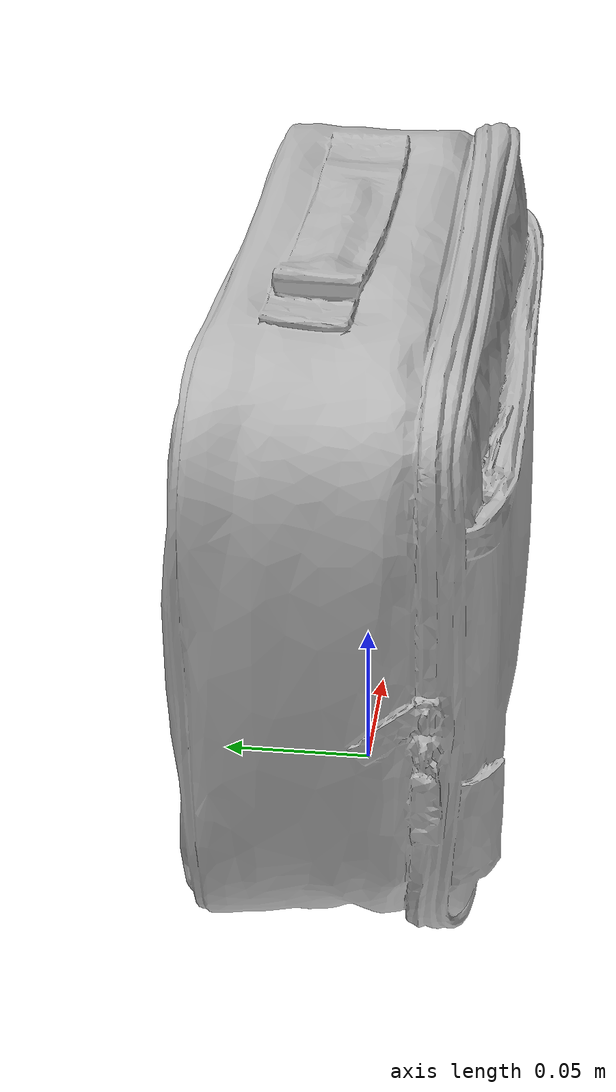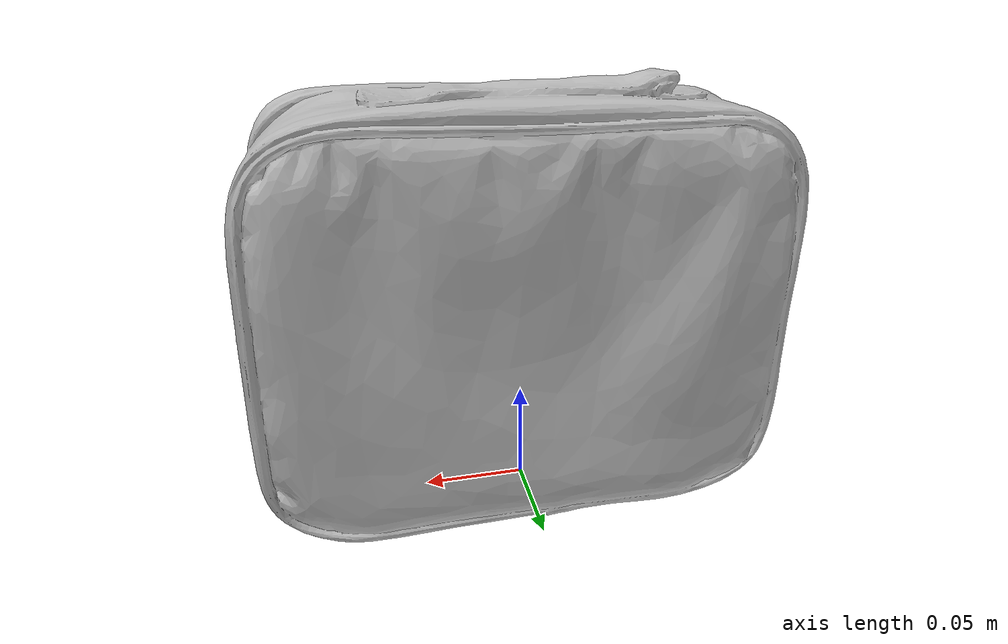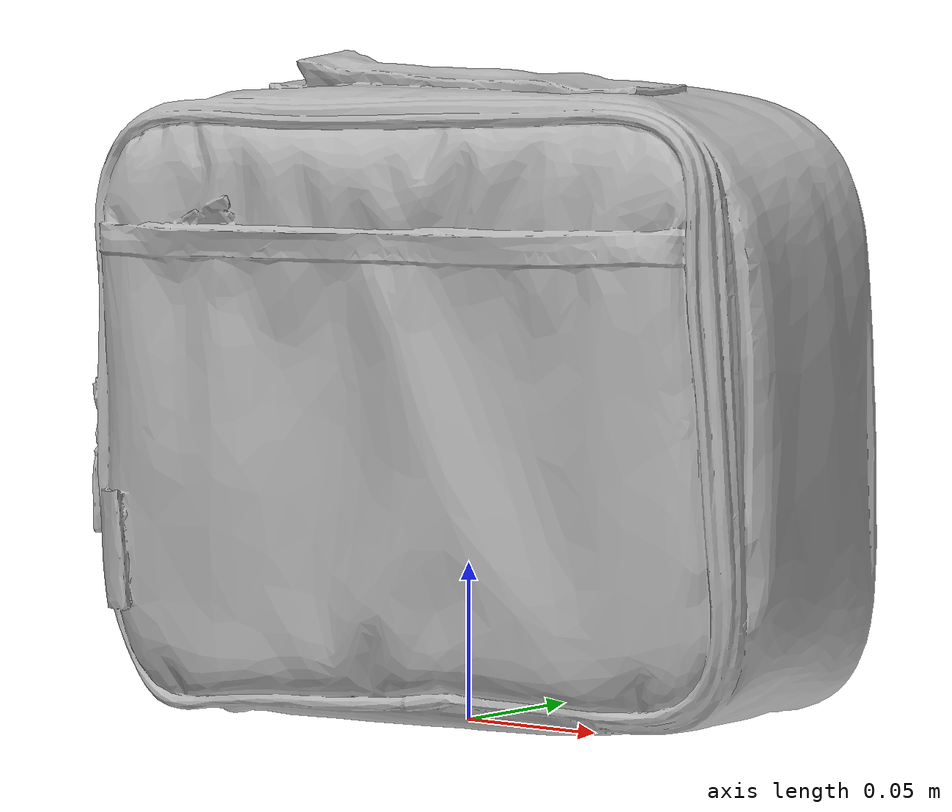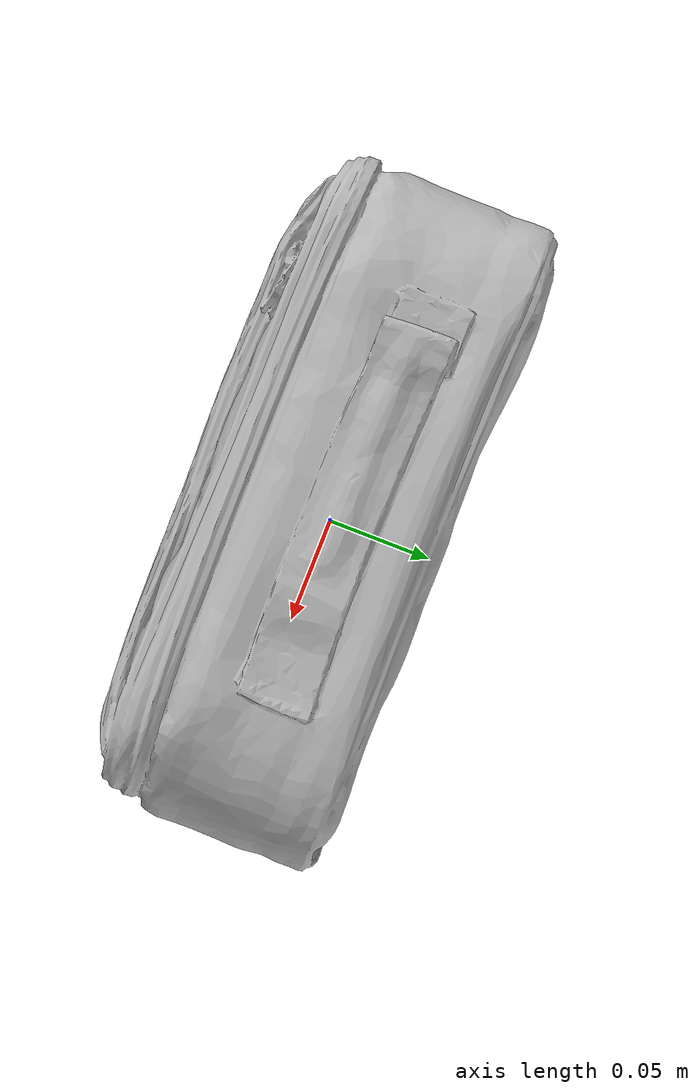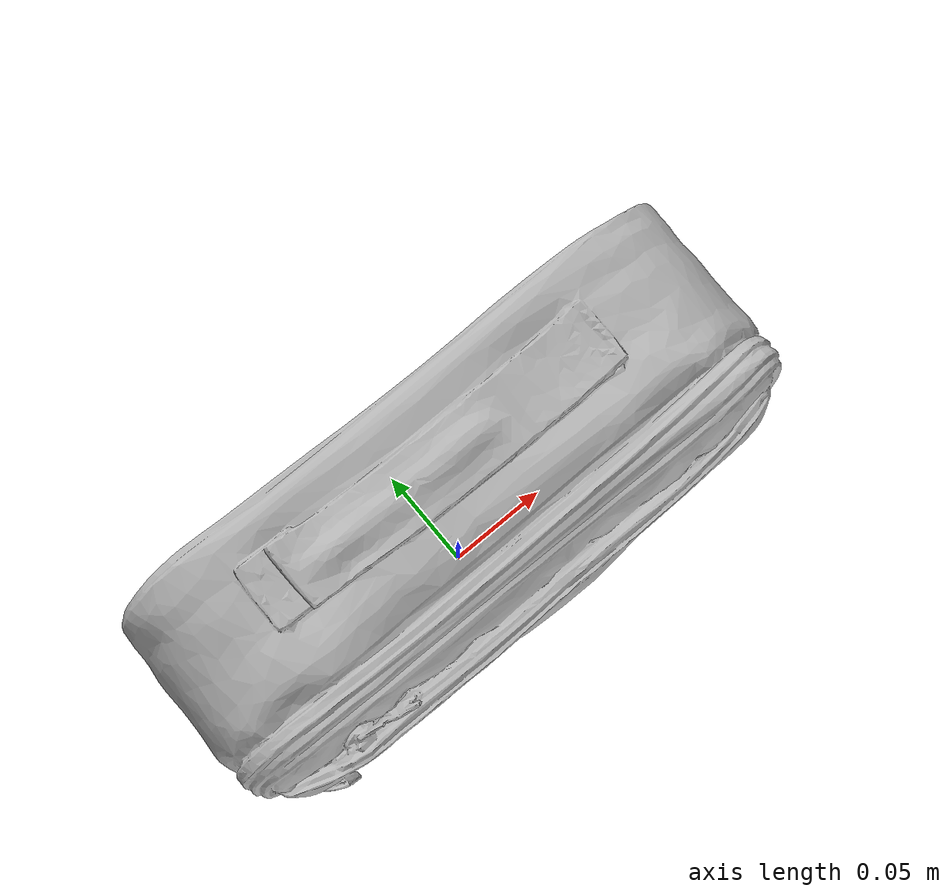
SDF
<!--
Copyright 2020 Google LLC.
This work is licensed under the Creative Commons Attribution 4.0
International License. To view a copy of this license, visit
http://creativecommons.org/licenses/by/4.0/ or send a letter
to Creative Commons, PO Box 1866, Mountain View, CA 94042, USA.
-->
<?xml version="1.0" ?>
<sdf version="1.6">
  <model name="Olive_Kids_Dinosaur_Land_Lunch_Box">
    <link name="link_0">
      <visual name="visual">
        <geometry>
          <mesh>
            <uri>meshes/model.obj</uri>
          </mesh>
        </geometry>
      </visual>
      <collision name="collision_0">
        <geometry>
          <mesh>
            <uri>meshes/model.obj</uri>
          </mesh>
        </geometry>
      </collision>
    </link>
  </model>
</sdf>
